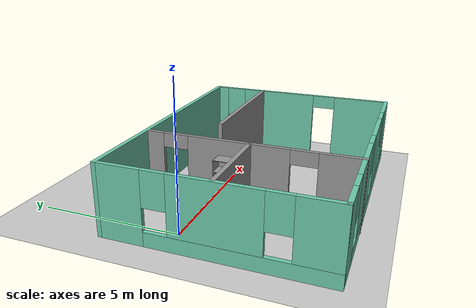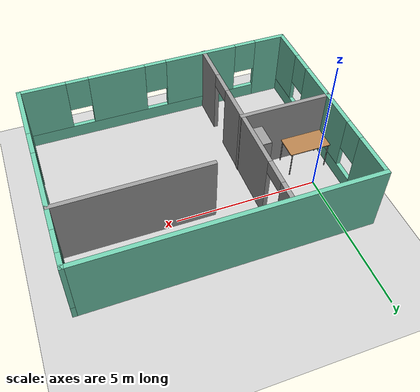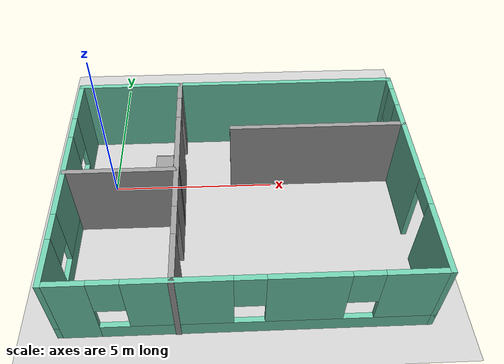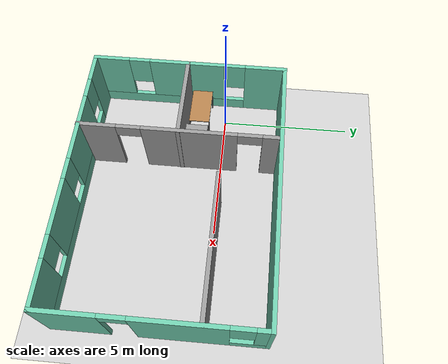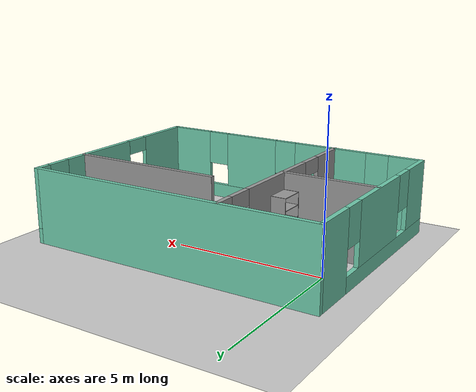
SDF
<sdf version="1.6">
 <world name="default">
  <model name="ground_plane">
   <static>1</static>
   <link name="link">
    <collision name="collision">
     <geometry><plane><normal>0 0 1</normal><size>100 100</size></plane></geometry>
     <surface>
      <contact><collide_bitmask>65535</collide_bitmask></contact>
      <friction><ode><mu>100</mu><mu2>50</mu2></ode></friction>
     </surface>
    </collision>
    <visual name="visual">
     <cast_shadows>0</cast_shadows>
     <geometry><plane><normal>0 0 1</normal><size>100 100</size></plane></geometry>
     <material>
      <script><uri>file://media/materials/scripts/gazebo.material</uri><name>Gazebo/Grey</name></script>
     </material>
    </visual>
   </link>
  </model>
  <model name="Mybuilding">
   <pose>3.97503 -1.48469 0 0 -0 0</pose>
   <link name="Wall_0">
    <pose>-4.925 0.00969 0 0 0 -1.5708</pose>
    <visual name="Wall_0_Visual_0">
     <pose>-2.94906 0 1.25 0 -0 0</pose>
     <geometry><box><size>1.60188 0.15 2.5</size></box></geometry>
     <material>
      <script><uri>file://media/materials/scripts/gazebo.material</uri><name>Gazebo/Grey</name></script>
      <ambient>0.435294 0.796078 0.67451 1</ambient>
     </material>
     <meta><layer>0</layer></meta>
    </visual>
    <collision name="Wall_0_Collision_0">
     <geometry><box><size>1.60188 0.15 2.5</size></box></geometry>
     <pose>-2.94906 0 1.25 0 -0 0</pose>
    </collision>
    <visual name="Wall_0_Visual_1">
     <pose>0.800942 0 0.25 0 -0 0</pose>
     <geometry><box><size>5.89812 0.15 0.5</size></box></geometry>
     <material>
      <script><uri>file://media/materials/scripts/gazebo.material</uri><name>Gazebo/Grey</name></script>
      <ambient>0.435294 0.796078 0.67451 1</ambient>
     </material>
     <meta><layer>0</layer></meta>
    </visual>
    <collision name="Wall_0_Collision_1">
     <geometry><box><size>5.89812 0.15 0.5</size></box></geometry>
     <pose>0.800942 0 0.25 0 -0 0</pose>
    </collision>
    <visual name="Wall_0_Visual_2">
     <pose>0.102593 0 1.5 0 -0 0</pose>
     <geometry><box><size>2.90142 0.15 2</size></box></geometry>
     <material>
      <script><uri>file://media/materials/scripts/gazebo.material</uri><name>Gazebo/Grey</name></script>
      <ambient>0.435294 0.796078 0.67451 1</ambient>
     </material>
     <meta><layer>0</layer></meta>
    </visual>
    <collision name="Wall_0_Collision_2">
     <geometry><box><size>2.90142 0.15 2</size></box></geometry>
     <pose>0.102593 0 1.5 0 -0 0</pose>
    </collision>
    <visual name="Wall_0_Visual_3">
     <pose>3.05165 0 1.5 0 -0 0</pose>
     <geometry><box><size>1.3967 0.15 2</size></box></geometry>
     <material>
      <script><uri>file://media/materials/scripts/gazebo.material</uri><name>Gazebo/Grey</name></script>
      <ambient>0.435294 0.796078 0.67451 1</ambient>
     </material>
     <meta><layer>0</layer></meta>
    </visual>
    <collision name="Wall_0_Collision_3">
     <geometry><box><size>1.3967 0.15 2</size></box></geometry>
     <pose>3.05165 0 1.5 0 -0 0</pose>
    </collision>
    <visual name="Wall_0_Visual_4">
     <pose>-1.74812 0 1.9 0 -0 0</pose>
     <geometry><box><size>0.8 0.15 1.2</size></box></geometry>
     <material>
      <script><uri>file://media/materials/scripts/gazebo.material</uri><name>Gazebo/Grey</name></script>
      <ambient>0.435294 0.796078 0.67451 1</ambient>
     </material>
     <meta><layer>0</layer></meta>
    </visual>
    <collision name="Wall_0_Collision_4">
     <geometry><box><size>0.8 0.15 1.2</size></box></geometry>
     <pose>-1.74812 0 1.9 0 -0 0</pose>
    </collision>
    <visual name="Wall_0_Visual_5">
     <pose>1.9533 0 1.9 0 -0 0</pose>
     <geometry><box><size>0.8 0.15 1.2</size></box></geometry>
     <material>
      <script><uri>file://media/materials/scripts/gazebo.material</uri><name>Gazebo/Grey</name></script>
      <ambient>0.435294 0.796078 0.67451 1</ambient>
     </material>
     <meta><layer>0</layer></meta>
    </visual>
    <collision name="Wall_0_Collision_5">
     <geometry><box><size>0.8 0.15 1.2</size></box></geometry>
     <pose>1.9533 0 1.9 0 -0 0</pose>
    </collision>
   </link>
   <link name="Wall_1">
    <pose>0 -3.66531 0 0 -0 0</pose>
    <visual name="Wall_1_Visual_0">
     <pose>-4.40679 0 1.25 0 -0 0</pose>
     <geometry><box><size>1.18641 0.15 2.5</size></box></geometry>
     <material>
      <script><uri>file://media/materials/scripts/gazebo.material</uri><name>Gazebo/Grey</name></script>
      <ambient>0.435294 0.796078 0.67451 1</ambient>
     </material>
     <meta><layer>0</layer></meta>
    </visual>
    <collision name="Wall_1_Collision_0">
     <geometry><box><size>1.18641 0.15 2.5</size></box></geometry>
     <pose>-4.40679 0 1.25 0 -0 0</pose>
    </collision>
    <visual name="Wall_1_Visual_1">
     <pose>0.593207 0 0.25 0 -0 0</pose>
     <geometry><box><size>8.81358 0.15 0.5</size></box></geometry>
     <material>
      <script><uri>file://media/materials/scripts/gazebo.material</uri><name>Gazebo/Grey</name></script>
      <ambient>0.435294 0.796078 0.67451 1</ambient>
     </material>
     <meta><layer>0</layer></meta>
    </visual>
    <collision name="Wall_1_Collision_1">
     <geometry><box><size>8.81358 0.15 0.5</size></box></geometry>
     <pose>0.593207 0 0.25 0 -0 0</pose>
    </collision>
    <visual name="Wall_1_Visual_2">
     <pose>-1.66994 0 1.5 0 -0 0</pose>
     <geometry><box><size>2.68729 0.15 2</size></box></geometry>
     <material>
      <script><uri>file://media/materials/scripts/gazebo.material</uri><name>Gazebo/Grey</name></script>
      <ambient>0.435294 0.796078 0.67451 1</ambient>
     </material>
     <meta><layer>0</layer></meta>
    </visual>
    <collision name="Wall_1_Collision_2">
     <geometry><box><size>2.68729 0.15 2</size></box></geometry>
     <pose>-1.66994 0 1.5 0 -0 0</pose>
    </collision>
    <visual name="Wall_1_Visual_3">
     <pose>1.49615 0 1.5 0 -0 0</pose>
     <geometry><box><size>2.04489 0.15 2</size></box></geometry>
     <material>
      <script><uri>file://media/materials/scripts/gazebo.material</uri><name>Gazebo/Grey</name></script>
      <ambient>0.435294 0.796078 0.67451 1</ambient>
     </material>
     <meta><layer>0</layer></meta>
    </visual>
    <collision name="Wall_1_Collision_3">
     <geometry><box><size>2.04489 0.15 2</size></box></geometry>
     <pose>1.49615 0 1.5 0 -0 0</pose>
    </collision>
    <visual name="Wall_1_Visual_4">
     <pose>4.1593 0 1.5 0 -0 0</pose>
     <geometry><box><size>1.68141 0.15 2</size></box></geometry>
     <material>
      <script><uri>file://media/materials/scripts/gazebo.material</uri><name>Gazebo/Grey</name></script>
      <ambient>0.435294 0.796078 0.67451 1</ambient>
     </material>
     <meta><layer>0</layer></meta>
    </visual>
    <collision name="Wall_1_Collision_4">
     <geometry><box><size>1.68141 0.15 2</size></box></geometry>
     <pose>4.1593 0 1.5 0 -0 0</pose>
    </collision>
    <visual name="Wall_1_Visual_5">
     <pose>-3.41358 0 1.9 0 -0 0</pose>
     <geometry><box><size>0.8 0.15 1.2</size></box></geometry>
     <material>
      <script><uri>file://media/materials/scripts/gazebo.material</uri><name>Gazebo/Grey</name></script>
      <ambient>0.435294 0.796078 0.67451 1</ambient>
     </material>
     <meta><layer>0</layer></meta>
    </visual>
    <collision name="Wall_1_Collision_5">
     <geometry><box><size>0.8 0.15 1.2</size></box></geometry>
     <pose>-3.41358 0 1.9 0 -0 0</pose>
    </collision>
    <visual name="Wall_1_Visual_6">
     <pose>0.073701 0 1.9 0 -0 0</pose>
     <geometry><box><size>0.8 0.15 1.2</size></box></geometry>
     <material>
      <script><uri>file://media/materials/scripts/gazebo.material</uri><name>Gazebo/Grey</name></script>
      <ambient>0.435294 0.796078 0.67451 1</ambient>
     </material>
     <meta><layer>0</layer></meta>
    </visual>
    <collision name="Wall_1_Collision_6">
     <geometry><box><size>0.8 0.15 1.2</size></box></geometry>
     <pose>0.073701 0 1.9 0 -0 0</pose>
    </collision>
    <visual name="Wall_1_Visual_7">
     <pose>2.91859 0 1.9 0 -0 0</pose>
     <geometry><box><size>0.8 0.15 1.2</size></box></geometry>
     <material>
      <script><uri>file://media/materials/scripts/gazebo.material</uri><name>Gazebo/Grey</name></script>
      <ambient>0.435294 0.796078 0.67451 1</ambient>
     </material>
     <meta><layer>0</layer></meta>
    </visual>
    <collision name="Wall_1_Collision_7">
     <geometry><box><size>0.8 0.15 1.2</size></box></geometry>
     <pose>2.91859 0 1.9 0 -0 0</pose>
    </collision>
   </link>
   <link name="Wall_2">
    <pose>4.925 0.00969 0 0 -0 1.5708</pose>
    <visual name="Wall_2_Visual_0">
     <pose>-2.67898 0 1.25 0 -0 0</pose>
     <geometry><box><size>2.14204 0.15 2.5</size></box></geometry>
     <material>
      <script><uri>file://media/materials/scripts/gazebo.material</uri><name>Gazebo/Grey</name></script>
      <ambient>0.435294 0.796078 0.67451 1</ambient>
     </material>
     <meta><layer>0</layer></meta>
    </visual>
    <collision name="Wall_2_Collision_0">
     <geometry><box><size>2.14204 0.15 2.5</size></box></geometry>
     <pose>-2.67898 0 1.25 0 -0 0</pose>
    </collision>
    <visual name="Wall_2_Visual_1">
     <pose>0.840114 0 1.25 0 -0 0</pose>
     <geometry><box><size>3.09614 0.15 2.5</size></box></geometry>
     <material>
      <script><uri>file://media/materials/scripts/gazebo.material</uri><name>Gazebo/Grey</name></script>
      <ambient>0.435294 0.796078 0.67451 1</ambient>
     </material>
     <meta><layer>0</layer></meta>
    </visual>
    <collision name="Wall_2_Collision_1">
     <geometry><box><size>3.09614 0.15 2.5</size></box></geometry>
     <pose>0.840114 0 1.25 0 -0 0</pose>
    </collision>
    <visual name="Wall_2_Visual_2">
     <pose>3.06909 0 0.25 0 -0 0</pose>
     <geometry><box><size>1.36182 0.15 0.5</size></box></geometry>
     <material>
      <script><uri>file://media/materials/scripts/gazebo.material</uri><name>Gazebo/Grey</name></script>
      <ambient>0.435294 0.796078 0.67451 1</ambient>
     </material>
     <meta><layer>0</layer></meta>
    </visual>
    <collision name="Wall_2_Collision_2">
     <geometry><box><size>1.36182 0.15 0.5</size></box></geometry>
     <pose>3.06909 0 0.25 0 -0 0</pose>
    </collision>
    <visual name="Wall_2_Visual_3">
     <pose>3.46909 0 1.5 0 -0 0</pose>
     <geometry><box><size>0.561816 0.15 2</size></box></geometry>
     <material>
      <script><uri>file://media/materials/scripts/gazebo.material</uri><name>Gazebo/Grey</name></script>
      <ambient>0.435294 0.796078 0.67451 1</ambient>
     </material>
     <meta><layer>0</layer></meta>
    </visual>
    <collision name="Wall_2_Collision_3">
     <geometry><box><size>0.561816 0.15 2</size></box></geometry>
     <pose>3.46909 0 1.5 0 -0 0</pose>
    </collision>
    <visual name="Wall_2_Visual_4">
     <pose>2.78818 0 1.9 0 -0 0</pose>
     <geometry><box><size>0.8 0.15 1.2</size></box></geometry>
     <material>
      <script><uri>file://media/materials/scripts/gazebo.material</uri><name>Gazebo/Grey</name></script>
      <ambient>0.435294 0.796078 0.67451 1</ambient>
     </material>
     <meta><layer>0</layer></meta>
    </visual>
    <collision name="Wall_2_Collision_4">
     <geometry><box><size>0.8 0.15 1.2</size></box></geometry>
     <pose>2.78818 0 1.9 0 -0 0</pose>
    </collision>
    <visual name="Wall_2_Visual_5">
     <pose>-1.15796 0 2.25 0 -0 0</pose>
     <geometry><box><size>0.9 0.15 0.5</size></box></geometry>
     <material>
      <script><uri>file://media/materials/scripts/gazebo.material</uri><name>Gazebo/Grey</name></script>
      <ambient>0.435294 0.796078 0.67451 1</ambient>
     </material>
     <meta><layer>0</layer></meta>
    </visual>
    <collision name="Wall_2_Collision_5">
     <geometry><box><size>0.9 0.15 0.5</size></box></geometry>
     <pose>-1.15796 0 2.25 0 -0 0</pose>
    </collision>
   </link>
   <link name="Wall_21">
    <collision name="Wall_21_Collision">
     <geometry><box><size>3.25 0.15 2.5</size></box></geometry>
     <pose>0 0 1.25 0 -0 0</pose>
    </collision>
    <visual name="Wall_21_Visual">
     <pose>0 0 1.25 0 -0 0</pose>
     <geometry><box><size>3.25 0.15 2.5</size></box></geometry>
     <material>
      <script><uri>file://media/materials/scripts/gazebo.material</uri><name>Gazebo/Grey</name></script>
      <ambient>1 1 1 1</ambient>
     </material>
     <meta><layer>0</layer></meta>
    </visual>
    <pose>-3.33668 -0.048219 0 0 -0 0</pose>
   </link>
   <link name="Wall_23">
    <pose>-1.80162 -0.00969 0 0 0 -1.5708</pose>
    <visual name="Wall_23_Visual_0">
     <pose>-3.38142 0 1.25 0 -0 0</pose>
     <geometry><box><size>0.737158 0.15 2.5</size></box></geometry>
     <material>
      <script><uri>file://media/materials/scripts/gazebo.material</uri><name>Gazebo/Grey</name></script>
      <ambient>1 1 1 1</ambient>
     </material>
     <meta><layer>0</layer></meta>
    </visual>
    <collision name="Wall_23_Collision_0">
     <geometry><box><size>0.737158 0.15 2.5</size></box></geometry>
     <pose>-3.38142 0 1.25 0 -0 0</pose>
    </collision>
    <visual name="Wall_23_Visual_1">
     <pose>-0.360346 0 1.25 0 -0 0</pose>
     <geometry><box><size>3.50499 0.15 2.5</size></box></geometry>
     <material>
      <script><uri>file://media/materials/scripts/gazebo.material</uri><name>Gazebo/Grey</name></script>
      <ambient>1 1 1 1</ambient>
     </material>
     <meta><layer>0</layer></meta>
    </visual>
    <collision name="Wall_23_Collision_1">
     <geometry><box><size>3.50499 0.15 2.5</size></box></geometry>
     <pose>-0.360346 0 1.25 0 -0 0</pose>
    </collision>
    <visual name="Wall_23_Visual_2">
     <pose>3.02108 0 1.25 0 -0 0</pose>
     <geometry><box><size>1.45785 0.15 2.5</size></box></geometry>
     <material>
      <script><uri>file://media/materials/scripts/gazebo.material</uri><name>Gazebo/Grey</name></script>
      <ambient>1 1 1 1</ambient>
     </material>
     <meta><layer>0</layer></meta>
    </visual>
    <collision name="Wall_23_Collision_2">
     <geometry><box><size>1.45785 0.15 2.5</size></box></geometry>
     <pose>3.02108 0 1.25 0 -0 0</pose>
    </collision>
    <visual name="Wall_23_Visual_3">
     <pose>-2.56284 0 2.25 0 -0 0</pose>
     <geometry><box><size>0.9 0.15 0.5</size></box></geometry>
     <material>
      <script><uri>file://media/materials/scripts/gazebo.material</uri><name>Gazebo/Grey</name></script>
      <ambient>1 1 1 1</ambient>
     </material>
     <meta><layer>0</layer></meta>
    </visual>
    <collision name="Wall_23_Collision_3">
     <geometry><box><size>0.9 0.15 0.5</size></box></geometry>
     <pose>-2.56284 0 2.25 0 -0 0</pose>
    </collision>
    <visual name="Wall_23_Visual_4">
     <pose>1.84215 0 2.25 0 -0 0</pose>
     <geometry><box><size>0.9 0.15 0.5</size></box></geometry>
     <material>
      <script><uri>file://media/materials/scripts/gazebo.material</uri><name>Gazebo/Grey</name></script>
      <ambient>1 1 1 1</ambient>
     </material>
     <meta><layer>0</layer></meta>
    </visual>
    <collision name="Wall_23_Collision_4">
     <geometry><box><size>0.9 0.15 0.5</size></box></geometry>
     <pose>1.84215 0 2.25 0 -0 0</pose>
    </collision>
   </link>
   <link name="Wall_29">
    <collision name="Wall_29_Collision">
     <geometry><box><size>5.25 0.15 2.5</size></box></geometry>
     <pose>0 0 1.25 0 -0 0</pose>
    </collision>
    <visual name="Wall_29_Visual">
     <pose>0 0 1.25 0 -0 0</pose>
     <geometry><box><size>5.25 0.15 2.5</size></box></geometry>
     <material>
      <script><uri>file://media/materials/scripts/gazebo.material</uri><name>Gazebo/Grey</name></script>
      <ambient>1 1 1 1</ambient>
     </material>
     <meta><layer>0</layer></meta>
    </visual>
    <pose>2.35696 1.57427 0 0 -0 3.14159</pose>
   </link>
   <link name="Wall_3">
    <collision name="Wall_3_Collision">
     <geometry><box><size>10 0.15 2.5</size></box></geometry>
     <pose>0 0 1.25 0 -0 0</pose>
    </collision>
    <visual name="Wall_3_Visual">
     <pose>0 0 1.25 0 -0 0</pose>
     <geometry><box><size>10 0.15 2.5</size></box></geometry>
     <material>
      <script><uri>file://media/materials/scripts/gazebo.material</uri><name>Gazebo/Grey</name></script>
      <ambient>0.435294 0.796078 0.67451 1</ambient>
     </material>
     <meta><layer>0</layer></meta>
    </visual>
    <pose>0 3.68469 0 0 -0 3.14159</pose>
   </link>
   <static>1</static>
  </model>
  <model name="table_0">
   <static>1</static>
   <link name="link">
    <collision name="surface">
     <pose>0 0 1 0 -0 0</pose>
     <geometry><box><size>1.5 0.8 0.03</size></box></geometry>
     <surface><friction><ode><mu>0.6</mu><mu2>0.6</mu2></ode></friction></surface>
    </collision>
    <visual name="visual1">
     <pose>0 0 1 0 -0 0</pose>
     <geometry><box><size>1.5 0.8 0.03</size></box></geometry>
     <material>
      <script><uri>file://media/materials/scripts/gazebo.material</uri><name>Gazebo/Wood</name></script>
     </material>
    </visual>
    <collision name="front_left_leg">
     <pose>0.68 0.38 0.5 0 -0 0</pose>
     <geometry><cylinder><radius>0.02</radius><length>1</length></cylinder></geometry>
    </collision>
    <visual name="front_left_leg">
     <pose>0.68 0.38 0.5 0 -0 0</pose>
     <geometry><cylinder><radius>0.02</radius><length>1</length></cylinder></geometry>
     <material>
      <script><uri>file://media/materials/scripts/gazebo.material</uri><name>Gazebo/Grey</name></script>
     </material>
    </visual>
    <collision name="front_right_leg">
     <pose>0.68 -0.38 0.5 0 -0 0</pose>
     <geometry><cylinder><radius>0.02</radius><length>1</length></cylinder></geometry>
    </collision>
    <visual name="front_right_leg">
     <pose>0.68 -0.38 0.5 0 -0 0</pose>
     <geometry><cylinder><radius>0.02</radius><length>1</length></cylinder></geometry>
     <material>
      <script><uri>file://media/materials/scripts/gazebo.material</uri><name>Gazebo/Grey</name></script>
     </material>
    </visual>
    <collision name="back_right_leg">
     <pose>-0.68 -0.38 0.5 0 -0 0</pose>
     <geometry><cylinder><radius>0.02</radius><length>1</length></cylinder></geometry>
    </collision>
    <visual name="back_right_leg">
     <pose>-0.68 -0.38 0.5 0 -0 0</pose>
     <geometry><cylinder><radius>0.02</radius><length>1</length></cylinder></geometry>
     <material>
      <script><uri>file://media/materials/scripts/gazebo.material</uri><name>Gazebo/Grey</name></script>
     </material>
    </visual>
    <collision name="back_left_leg">
     <pose>-0.68 0.38 0.5 0 -0 0</pose>
     <geometry><cylinder><radius>0.02</radius><length>1</length></cylinder></geometry>
    </collision>
    <visual name="back_left_leg">
     <pose>-0.68 0.38 0.5 0 -0 0</pose>
     <geometry><cylinder><radius>0.02</radius><length>1</length></cylinder></geometry>
     <material>
      <script><uri>file://media/materials/scripts/gazebo.material</uri><name>Gazebo/Grey</name></script>
     </material>
    </visual>
   </link>
   <pose>-0.061512 -0.994582 0 0 -0 0</pose>
  </model>
  <model name="bookshelf">
   <link name="link_0">
    <pose>0 0.41 0.005 0 -0 0</pose>
    <inertial>
     <mass>1</mass>
     <inertia>
      <ixx>0.166667</ixx>
      <ixy>0</ixy>
      <ixz>0</ixz>
      <iyy>0.166667</iyy>
      <iyz>0</iyz>
      <izz>0.166667</izz>
     </inertia>
    </inertial>
    <visual name="visual">
     <geometry><box><size>0.5 0.02 2</size></box></geometry>
     <material>
      <lighting>1</lighting>
      <script><uri>file://media/materials/scripts/gazebo.material</uri><name>Gazebo/Grey</name></script>
      <shader type="pixel"><normal_map>__default__</normal_map></shader>
      <ambient>0.3 0.3 0.3 1</ambient>
      <diffuse>0.7 0.7 0.7 1</diffuse>
      <specular>0.01 0.01 0.01 1</specular>
      <emissive>0 0 0 1</emissive>
     </material>
    </visual>
    <collision name="collision">
     <geometry><box><size>0.5 0.02 2</size></box></geometry>
     <surface>
      <friction>
       <ode><mu>1</mu><mu2>1</mu2><fdir1>0 0 0</fdir1><slip1>0</slip1><slip2>0</slip2></ode>
       <torsional>
        <coefficient>1</coefficient>
        <patch_radius>0</patch_radius>
        <surface_radius>0</surface_radius>
        <use_patch_radius>1</use_patch_radius>
        <ode><slip>0</slip></ode>
       </torsional>
      </friction>
      <bounce><restitution_coefficient>0</restitution_coefficient><threshold>1e+06</threshold></bounce>
      <contact>
       <collide_without_contact>0</collide_without_contact>
       <collide_without_contact_bitmask>1</collide_without_contact_bitmask>
       <collide_bitmask>1</collide_bitmask>
       <ode>
        <soft_cfm>0</soft_cfm>
        <soft_erp>0.2</soft_erp>
        <kp>1e+13</kp>
        <kd>1</kd>
        <max_vel>0.01</max_vel>
        <min_depth>0</min_depth>
       </ode>
       <bullet>
        <split_impulse>1</split_impulse>
        <split_impulse_penetration_threshold>-0.01</split_impulse_penetration_threshold>
        <soft_cfm>0</soft_cfm>
        <soft_erp>0.2</soft_erp>
        <kp>1e+13</kp>
        <kd>1</kd>
       </bullet>
      </contact>
     </surface>
    </collision>
   </link>
   <link name="link_0_clone">
    <pose>0 -0.41 0.005 0 -0 0</pose>
    <inertial>
     <mass>1</mass>
     <inertia>
      <ixx>0.166667</ixx>
      <ixy>0</ixy>
      <ixz>0</ixz>
      <iyy>0.166667</iyy>
      <iyz>0</iyz>
      <izz>0.166667</izz>
     </inertia>
    </inertial>
    <visual name="visual">
     <geometry><box><size>0.5 0.02 2</size></box></geometry>
     <material>
      <lighting>1</lighting>
      <script><uri>file://media/materials/scripts/gazebo.material</uri><name>Gazebo/Grey</name></script>
      <shader type="pixel"><normal_map>__default__</normal_map></shader>
      <ambient>0.3 0.3 0.3 1</ambient>
      <diffuse>0.7 0.7 0.7 1</diffuse>
      <specular>0.01 0.01 0.01 1</specular>
      <emissive>0 0 0 1</emissive>
     </material>
    </visual>
    <collision name="collision">
     <geometry><box><size>0.5 0.02 2</size></box></geometry>
     <surface>
      <friction>
       <ode><mu>1</mu><mu2>1</mu2><fdir1>0 0 0</fdir1><slip1>0</slip1><slip2>0</slip2></ode>
       <torsional>
        <coefficient>1</coefficient>
        <patch_radius>0</patch_radius>
        <surface_radius>0</surface_radius>
        <use_patch_radius>1</use_patch_radius>
        <ode><slip>0</slip></ode>
       </torsional>
      </friction>
      <bounce><restitution_coefficient>0</restitution_coefficient><threshold>1e+06</threshold></bounce>
      <contact>
       <collide_without_contact>0</collide_without_contact>
       <collide_without_contact_bitmask>1</collide_without_contact_bitmask>
       <collide_bitmask>1</collide_bitmask>
       <ode>
        <soft_cfm>0</soft_cfm>
        <soft_erp>0.2</soft_erp>
        <kp>1e+13</kp>
        <kd>1</kd>
        <max_vel>0.01</max_vel>
        <min_depth>0</min_depth>
       </ode>
       <bullet>
        <split_impulse>1</split_impulse>
        <split_impulse_penetration_threshold>-0.01</split_impulse_penetration_threshold>
        <soft_cfm>0</soft_cfm>
        <soft_erp>0.2</soft_erp>
        <kp>1e+13</kp>
        <kd>1</kd>
       </bullet>
      </contact>
     </surface>
    </collision>
   </link>
   <link name="link_1">
    <pose>0 0 -0.985 0 -0 0</pose>
    <inertial>
     <mass>1</mass>
     <inertia>
      <ixx>0.166667</ixx>
      <ixy>0</ixy>
      <ixz>0</ixz>
      <iyy>0.166667</iyy>
      <iyz>0</iyz>
      <izz>0.166667</izz>
     </inertia>
     <pose>0 0 0.01 0 -0 0</pose>
    </inertial>
    <visual name="visual">
     <geometry><box><size>0.5 0.8 0.02</size></box></geometry>
     <material>
      <lighting>1</lighting>
      <script><uri>file://media/materials/scripts/gazebo.material</uri><name>Gazebo/Grey</name></script>
      <shader type="pixel"><normal_map>__default__</normal_map></shader>
      <ambient>0.3 0.3 0.3 1</ambient>
      <diffuse>0.7 0.7 0.7 1</diffuse>
      <specular>0.01 0.01 0.01 1</specular>
      <emissive>0 0 0 1</emissive>
     </material>
    </visual>
    <collision name="collision">
     <geometry><box><size>0.5 0.8 0.02</size></box></geometry>
     <surface>
      <friction>
       <ode><mu>1</mu><mu2>1</mu2><fdir1>0 0 0</fdir1><slip1>0</slip1><slip2>0</slip2></ode>
       <torsional>
        <coefficient>1</coefficient>
        <patch_radius>0</patch_radius>
        <surface_radius>0</surface_radius>
        <use_patch_radius>1</use_patch_radius>
        <ode><slip>0</slip></ode>
       </torsional>
      </friction>
      <bounce><restitution_coefficient>0</restitution_coefficient><threshold>1e+06</threshold></bounce>
      <contact>
       <collide_without_contact>0</collide_without_contact>
       <collide_without_contact_bitmask>1</collide_without_contact_bitmask>
       <collide_bitmask>1</collide_bitmask>
       <ode>
        <soft_cfm>0</soft_cfm>
        <soft_erp>0.2</soft_erp>
        <kp>1e+13</kp>
        <kd>1</kd>
        <max_vel>0.01</max_vel>
        <min_depth>0</min_depth>
       </ode>
       <bullet>
        <split_impulse>1</split_impulse>
        <split_impulse_penetration_threshold>-0.01</split_impulse_penetration_threshold>
        <soft_cfm>0</soft_cfm>
        <soft_erp>0.2</soft_erp>
        <kp>1e+13</kp>
        <kd>1</kd>
       </bullet>
      </contact>
     </surface>
    </collision>
   </link>
   <link name="link_1_clone">
    <pose>0 0 0.195 0 -0 0</pose>
    <inertial>
     <mass>1</mass>
     <inertia>
      <ixx>0.166667</ixx>
      <ixy>0</ixy>
      <ixz>0</ixz>
      <iyy>0.166667</iyy>
      <iyz>0</iyz>
      <izz>0.166667</izz>
     </inertia>
     <pose>0 0 0.01 0 -0 0</pose>
    </inertial>
    <visual name="visual">
     <geometry><box><size>0.5 0.8 0.02</size></box></geometry>
     <material>
      <lighting>1</lighting>
      <script><uri>file://media/materials/scripts/gazebo.material</uri><name>Gazebo/Grey</name></script>
      <shader type="pixel"><normal_map>__default__</normal_map></shader>
      <ambient>0.3 0.3 0.3 1</ambient>
      <diffuse>0.7 0.7 0.7 1</diffuse>
      <specular>0.01 0.01 0.01 1</specular>
      <emissive>0 0 0 1</emissive>
     </material>
    </visual>
    <collision name="collision">
     <geometry><box><size>0.5 0.8 0.02</size></box></geometry>
     <surface>
      <friction>
       <ode><mu>1</mu><mu2>1</mu2><fdir1>0 0 0</fdir1><slip1>0</slip1><slip2>0</slip2></ode>
       <torsional>
        <coefficient>1</coefficient>
        <patch_radius>0</patch_radius>
        <surface_radius>0</surface_radius>
        <use_patch_radius>1</use_patch_radius>
        <ode><slip>0</slip></ode>
       </torsional>
      </friction>
      <bounce><restitution_coefficient>0</restitution_coefficient><threshold>1e+06</threshold></bounce>
      <contact>
       <collide_without_contact>0</collide_without_contact>
       <collide_without_contact_bitmask>1</collide_without_contact_bitmask>
       <collide_bitmask>1</collide_bitmask>
       <ode>
        <soft_cfm>0</soft_cfm>
        <soft_erp>0.2</soft_erp>
        <kp>1e+13</kp>
        <kd>1</kd>
        <max_vel>0.01</max_vel>
        <min_depth>0</min_depth>
       </ode>
       <bullet>
        <split_impulse>1</split_impulse>
        <split_impulse_penetration_threshold>-0.01</split_impulse_penetration_threshold>
        <soft_cfm>0</soft_cfm>
        <soft_erp>0.2</soft_erp>
        <kp>1e+13</kp>
        <kd>1</kd>
       </bullet>
      </contact>
     </surface>
    </collision>
   </link>
   <link name="link_1_clone_0">
    <pose>0 0 -0.205 0 -0 0</pose>
    <inertial>
     <mass>1</mass>
     <inertia>
      <ixx>0.166667</ixx>
      <ixy>0</ixy>
      <ixz>0</ixz>
      <iyy>0.166667</iyy>
      <iyz>0</iyz>
      <izz>0.166667</izz>
     </inertia>
     <pose>0 0 0.01 0 -0 0</pose>
    </inertial>
    <visual name="visual">
     <geometry><box><size>0.5 0.8 0.02</size></box></geometry>
     <material>
      <lighting>1</lighting>
      <script><uri>file://media/materials/scripts/gazebo.material</uri><name>Gazebo/Grey</name></script>
      <shader type="pixel"><normal_map>__default__</normal_map></shader>
      <ambient>0.3 0.3 0.3 1</ambient>
      <diffuse>0.7 0.7 0.7 1</diffuse>
      <specular>0.01 0.01 0.01 1</specular>
      <emissive>0 0 0 1</emissive>
     </material>
    </visual>
    <collision name="collision">
     <geometry><box><size>0.5 0.8 0.02</size></box></geometry>
     <surface>
      <friction>
       <ode><mu>1</mu><mu2>1</mu2><fdir1>0 0 0</fdir1><slip1>0</slip1><slip2>0</slip2></ode>
       <torsional>
        <coefficient>1</coefficient>
        <patch_radius>0</patch_radius>
        <surface_radius>0</surface_radius>
        <use_patch_radius>1</use_patch_radius>
        <ode><slip>0</slip></ode>
       </torsional>
      </friction>
      <bounce><restitution_coefficient>0</restitution_coefficient><threshold>1e+06</threshold></bounce>
      <contact>
       <collide_without_contact>0</collide_without_contact>
       <collide_without_contact_bitmask>1</collide_without_contact_bitmask>
       <collide_bitmask>1</collide_bitmask>
       <ode>
        <soft_cfm>0</soft_cfm>
        <soft_erp>0.2</soft_erp>
        <kp>1e+13</kp>
        <kd>1</kd>
        <max_vel>0.01</max_vel>
        <min_depth>0</min_depth>
       </ode>
       <bullet>
        <split_impulse>1</split_impulse>
        <split_impulse_penetration_threshold>-0.01</split_impulse_penetration_threshold>
        <soft_cfm>0</soft_cfm>
        <soft_erp>0.2</soft_erp>
        <kp>1e+13</kp>
        <kd>1</kd>
       </bullet>
      </contact>
     </surface>
    </collision>
   </link>
   <link name="link_1_clone_1">
    <pose>0 0 -0.605 0 -0 0</pose>
    <inertial>
     <mass>1</mass>
     <inertia>
      <ixx>0.166667</ixx>
      <ixy>0</ixy>
      <ixz>0</ixz>
      <iyy>0.166667</iyy>
      <iyz>0</iyz>
      <izz>0.166667</izz>
     </inertia>
     <pose>0 0 0.01 0 -0 0</pose>
    </inertial>
    <visual name="visual">
     <geometry><box><size>0.5 0.8 0.02</size></box></geometry>
     <material>
      <lighting>1</lighting>
      <script><uri>file://media/materials/scripts/gazebo.material</uri><name>Gazebo/Grey</name></script>
      <shader type="pixel"><normal_map>__default__</normal_map></shader>
      <ambient>0.3 0.3 0.3 1</ambient>
      <diffuse>0.7 0.7 0.7 1</diffuse>
      <specular>0.01 0.01 0.01 1</specular>
      <emissive>0 0 0 1</emissive>
     </material>
    </visual>
    <collision name="collision">
     <geometry><box><size>0.5 0.8 0.02</size></box></geometry>
     <surface>
      <friction>
       <ode><mu>1</mu><mu2>1</mu2><fdir1>0 0 0</fdir1><slip1>0</slip1><slip2>0</slip2></ode>
       <torsional>
        <coefficient>1</coefficient>
        <patch_radius>0</patch_radius>
        <surface_radius>0</surface_radius>
        <use_patch_radius>1</use_patch_radius>
        <ode><slip>0</slip></ode>
       </torsional>
      </friction>
      <bounce><restitution_coefficient>0</restitution_coefficient><threshold>1e+06</threshold></bounce>
      <contact>
       <collide_without_contact>0</collide_without_contact>
       <collide_without_contact_bitmask>1</collide_without_contact_bitmask>
       <collide_bitmask>1</collide_bitmask>
       <ode>
        <soft_cfm>0</soft_cfm>
        <soft_erp>0.2</soft_erp>
        <kp>1e+13</kp>
        <kd>1</kd>
        <max_vel>0.01</max_vel>
        <min_depth>0</min_depth>
       </ode>
       <bullet>
        <split_impulse>1</split_impulse>
        <split_impulse_penetration_threshold>-0.01</split_impulse_penetration_threshold>
        <soft_cfm>0</soft_cfm>
        <soft_erp>0.2</soft_erp>
        <kp>1e+13</kp>
        <kd>1</kd>
       </bullet>
      </contact>
     </surface>
    </collision>
   </link>
   <link name="link_1_clone_2">
    <pose>0 0 0.595 0 -0 0</pose>
    <inertial>
     <mass>1</mass>
     <inertia>
      <ixx>0.166667</ixx>
      <ixy>0</ixy>
      <ixz>0</ixz>
      <iyy>0.166667</iyy>
      <iyz>0</iyz>
      <izz>0.166667</izz>
     </inertia>
     <pose>0 0 0.01 0 -0 0</pose>
    </inertial>
    <visual name="visual">
     <geometry><box><size>0.5 0.8 0.02</size></box></geometry>
     <material>
      <lighting>1</lighting>
      <script><uri>file://media/materials/scripts/gazebo.material</uri><name>Gazebo/Grey</name></script>
      <shader type="pixel"><normal_map>__default__</normal_map></shader>
      <ambient>0.3 0.3 0.3 1</ambient>
      <diffuse>0.7 0.7 0.7 1</diffuse>
      <specular>0.01 0.01 0.01 1</specular>
      <emissive>0 0 0 1</emissive>
     </material>
    </visual>
    <collision name="collision">
     <geometry><box><size>0.5 0.8 0.02</size></box></geometry>
     <surface>
      <friction>
       <ode><mu>1</mu><mu2>1</mu2><fdir1>0 0 0</fdir1><slip1>0</slip1><slip2>0</slip2></ode>
       <torsional>
        <coefficient>1</coefficient>
        <patch_radius>0</patch_radius>
        <surface_radius>0</surface_radius>
        <use_patch_radius>1</use_patch_radius>
        <ode><slip>0</slip></ode>
       </torsional>
      </friction>
      <bounce><restitution_coefficient>0</restitution_coefficient><threshold>1e+06</threshold></bounce>
      <contact>
       <collide_without_contact>0</collide_without_contact>
       <collide_without_contact_bitmask>1</collide_without_contact_bitmask>
       <collide_bitmask>1</collide_bitmask>
       <ode>
        <soft_cfm>0</soft_cfm>
        <soft_erp>0.2</soft_erp>
        <kp>1e+13</kp>
        <kd>1</kd>
        <max_vel>0.01</max_vel>
        <min_depth>0</min_depth>
       </ode>
       <bullet>
        <split_impulse>1</split_impulse>
        <split_impulse_penetration_threshold>-0.01</split_impulse_penetration_threshold>
        <soft_cfm>0</soft_cfm>
        <soft_erp>0.2</soft_erp>
        <kp>1e+13</kp>
        <kd>1</kd>
       </bullet>
      </contact>
     </surface>
    </collision>
   </link>
   <link name="link_1_clone_3">
    <pose>0 0 0.995 0 -0 0</pose>
    <inertial>
     <mass>1</mass>
     <inertia>
      <ixx>0.166667</ixx>
      <ixy>0</ixy>
      <ixz>0</ixz>
      <iyy>0.166667</iyy>
      <iyz>0</iyz>
      <izz>0.166667</izz>
     </inertia>
     <pose>0 0 0.01 0 -0 0</pose>
    </inertial>
    <visual name="visual">
     <geometry><box><size>0.5 0.8 0.02</size></box></geometry>
     <material>
      <lighting>1</lighting>
      <script><uri>file://media/materials/scripts/gazebo.material</uri><name>Gazebo/Grey</name></script>
      <shader type="pixel"><normal_map>__default__</normal_map></shader>
      <ambient>0.3 0.3 0.3 1</ambient>
      <diffuse>0.7 0.7 0.7 1</diffuse>
      <specular>0.01 0.01 0.01 1</specular>
      <emissive>0 0 0 1</emissive>
     </material>
    </visual>
    <collision name="collision">
     <geometry><box><size>0.5 0.8 0.02</size></box></geometry>
     <surface>
      <friction>
       <ode><mu>1</mu><mu2>1</mu2><fdir1>0 0 0</fdir1><slip1>0</slip1><slip2>0</slip2></ode>
       <torsional>
        <coefficient>1</coefficient>
        <patch_radius>0</patch_radius>
        <surface_radius>0</surface_radius>
        <use_patch_radius>1</use_patch_radius>
        <ode><slip>0</slip></ode>
       </torsional>
      </friction>
      <bounce><restitution_coefficient>0</restitution_coefficient><threshold>1e+06</threshold></bounce>
      <contact>
       <collide_without_contact>0</collide_without_contact>
       <collide_without_contact_bitmask>1</collide_without_contact_bitmask>
       <collide_bitmask>1</collide_bitmask>
       <ode>
        <soft_cfm>0</soft_cfm>
        <soft_erp>0.2</soft_erp>
        <kp>1e+13</kp>
        <kd>1</kd>
        <max_vel>0.01</max_vel>
        <min_depth>0</min_depth>
       </ode>
       <bullet>
        <split_impulse>1</split_impulse>
        <split_impulse_penetration_threshold>-0.01</split_impulse_penetration_threshold>
        <soft_cfm>0</soft_cfm>
        <soft_erp>0.2</soft_erp>
        <kp>1e+13</kp>
        <kd>1</kd>
       </bullet>
      </contact>
     </surface>
    </collision>
   </link>
   <joint name="link_0_JOINT_10" type="fixed">
    <parent>link_0</parent>
    <child>link_1_clone_2</child>
    <physics>
     <ode><limit><cfm>0</cfm><erp>0.2</erp></limit><suspension><cfm>0</cfm><erp>0.2</erp></suspension></ode>
    </physics>
   </joint>
   <joint name="link_0_JOINT_12" type="fixed">
    <parent>link_0</parent>
    <child>link_1_clone_3</child>
    <physics>
     <ode><limit><cfm>0</cfm><erp>0.2</erp></limit><suspension><cfm>0</cfm><erp>0.2</erp></suspension></ode>
    </physics>
   </joint>
   <joint name="link_0_JOINT_4" type="fixed">
    <parent>link_0</parent>
    <child>link_1_clone_1</child>
    <pose>0 0 0 -0.07 0 0</pose>
    <physics>
     <ode><limit><cfm>0</cfm><erp>0.2</erp></limit><suspension><cfm>0</cfm><erp>0.2</erp></suspension></ode>
    </physics>
   </joint>
   <joint name="link_0_JOINT_6" type="fixed">
    <parent>link_0</parent>
    <child>link_1_clone_0</child>
    <physics>
     <ode><limit><cfm>0</cfm><erp>0.2</erp></limit><suspension><cfm>0</cfm><erp>0.2</erp></suspension></ode>
    </physics>
   </joint>
   <joint name="link_0_JOINT_8" type="fixed">
    <parent>link_0</parent>
    <child>link_1_clone</child>
    <physics>
     <ode><limit><cfm>0</cfm><erp>0.2</erp></limit><suspension><cfm>0</cfm><erp>0.2</erp></suspension></ode>
    </physics>
   </joint>
   <joint name="link_0_clone_JOINT_11" type="fixed">
    <parent>link_0_clone</parent>
    <child>link_1_clone_3</child>
    <physics>
     <ode><limit><cfm>0</cfm><erp>0.2</erp></limit><suspension><cfm>0</cfm><erp>0.2</erp></suspension></ode>
    </physics>
   </joint>
   <joint name="link_0_clone_JOINT_3" type="fixed">
    <parent>link_0_clone</parent>
    <child>link_1_clone_1</child>
    <physics>
     <ode><limit><cfm>0</cfm><erp>0.2</erp></limit><suspension><cfm>0</cfm><erp>0.2</erp></suspension></ode>
    </physics>
   </joint>
   <joint name="link_0_clone_JOINT_5" type="revolute">
    <parent>link_0_clone</parent>
    <child>link_1_clone_0</child>
    <axis>
     <xyz>1 0 0</xyz>
     <use_parent_model_frame>0</use_parent_model_frame>
     <limit>
      <lower>-1.79769e+308</lower>
      <upper>1.79769e+308</upper>
      <effort>-1</effort>
      <velocity>-1</velocity>
     </limit>
     <dynamics>
      <spring_reference>0</spring_reference>
      <spring_stiffness>0</spring_stiffness>
      <damping>0</damping>
     </dynamics>
    </axis>
    <physics>
     <ode><limit><cfm>0</cfm><erp>0.2</erp></limit><suspension><cfm>0</cfm><erp>0.2</erp></suspension></ode>
    </physics>
   </joint>
   <joint name="link_0_clone_JOINT_7" type="fixed">
    <parent>link_0_clone</parent>
    <child>link_1_clone</child>
    <physics>
     <ode><limit><cfm>0</cfm><erp>0.2</erp></limit><suspension><cfm>0</cfm><erp>0.2</erp></suspension></ode>
    </physics>
   </joint>
   <joint name="link_0_clone_JOINT_9" type="fixed">
    <parent>link_0_clone</parent>
    <child>link_1_clone_2</child>
    <physics>
     <ode><limit><cfm>0</cfm><erp>0.2</erp></limit><suspension><cfm>0</cfm><erp>0.2</erp></suspension></ode>
    </physics>
   </joint>
   <joint name="link_1_JOINT_0" type="fixed">
    <parent>link_1</parent>
    <child>link_0</child>
    <physics>
     <ode><limit><cfm>0</cfm><erp>0.2</erp></limit><suspension><cfm>0</cfm><erp>0.2</erp></suspension></ode>
    </physics>
   </joint>
   <joint name="link_1_JOINT_1" type="fixed">
    <parent>link_1</parent>
    <child>link_0_clone</child>
    <pose>0 0 0 0 -0.01 0</pose>
    <physics>
     <ode><limit><cfm>0</cfm><erp>0.2</erp></limit><suspension><cfm>0</cfm><erp>0.2</erp></suspension></ode>
    </physics>
   </joint>
   <static>0</static>
   <pose>1.78101 -0.928343 0.995 0 1e-06 -0.003736</pose>
  </model>
 </world>
</sdf>
